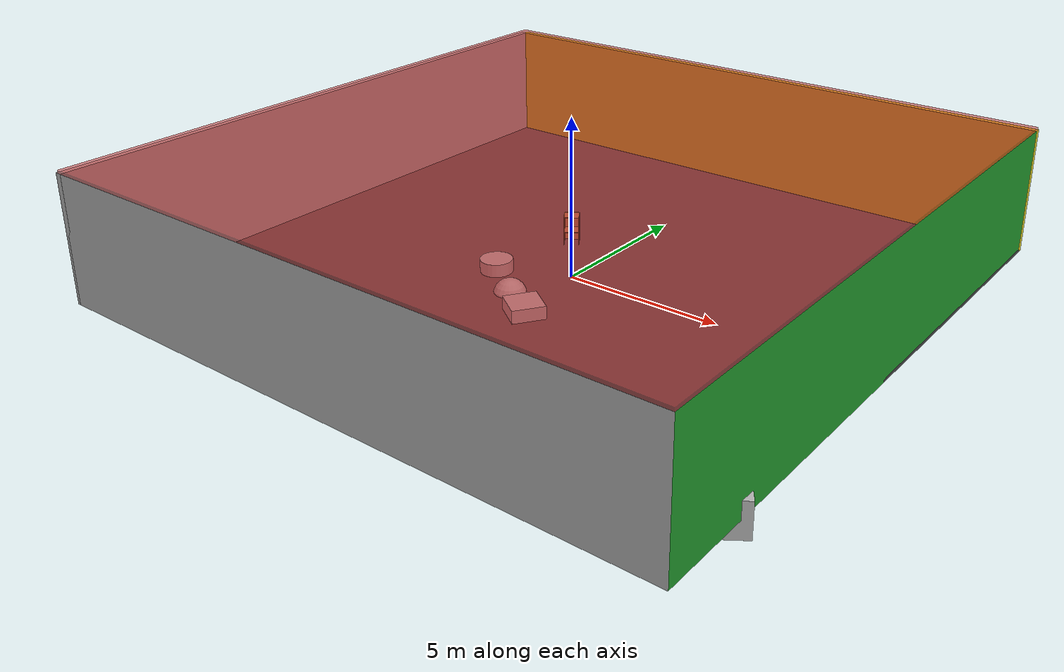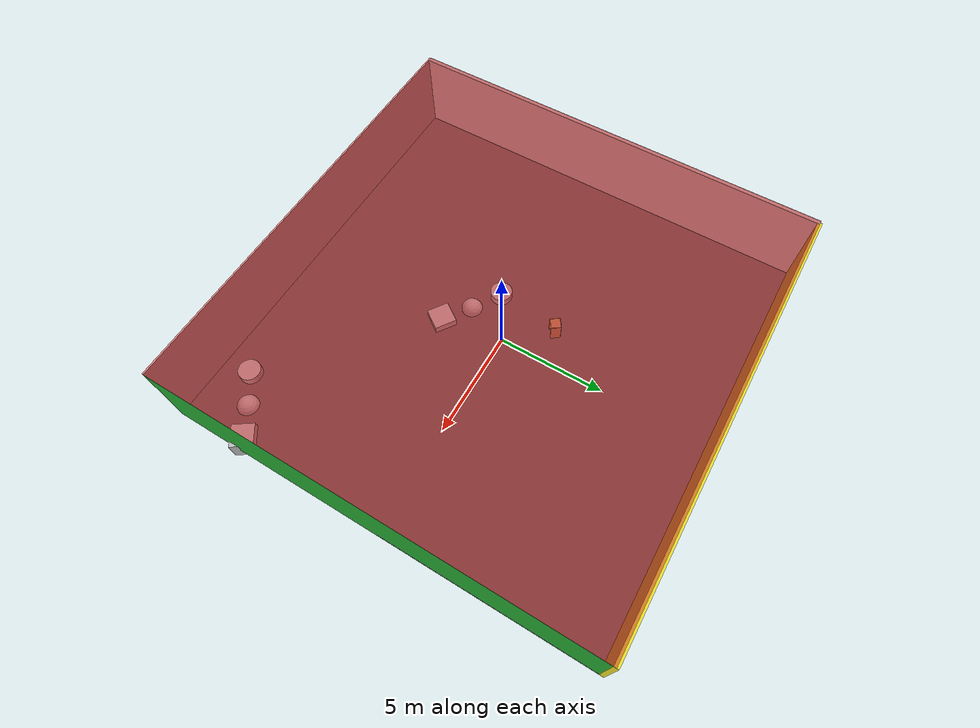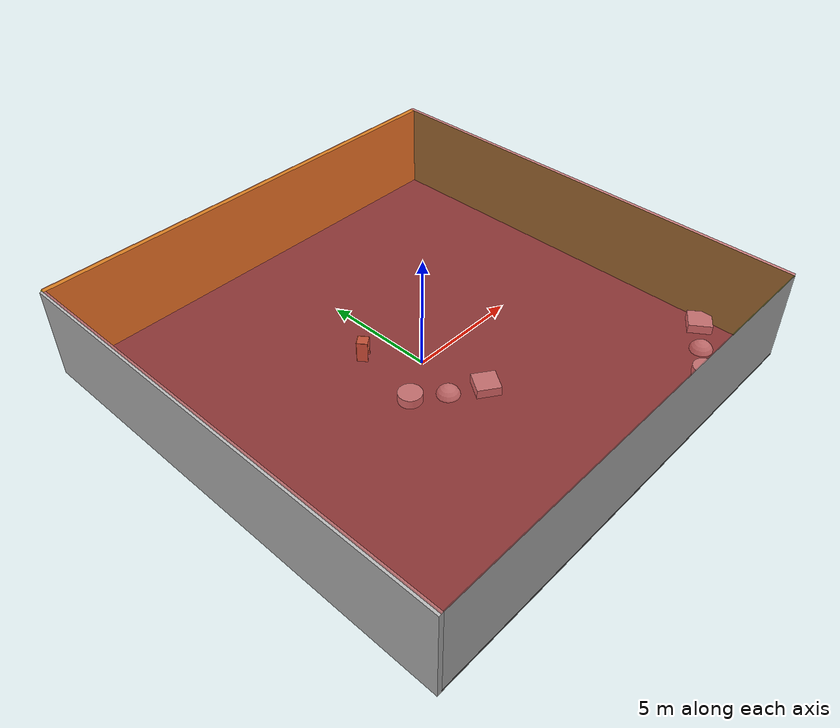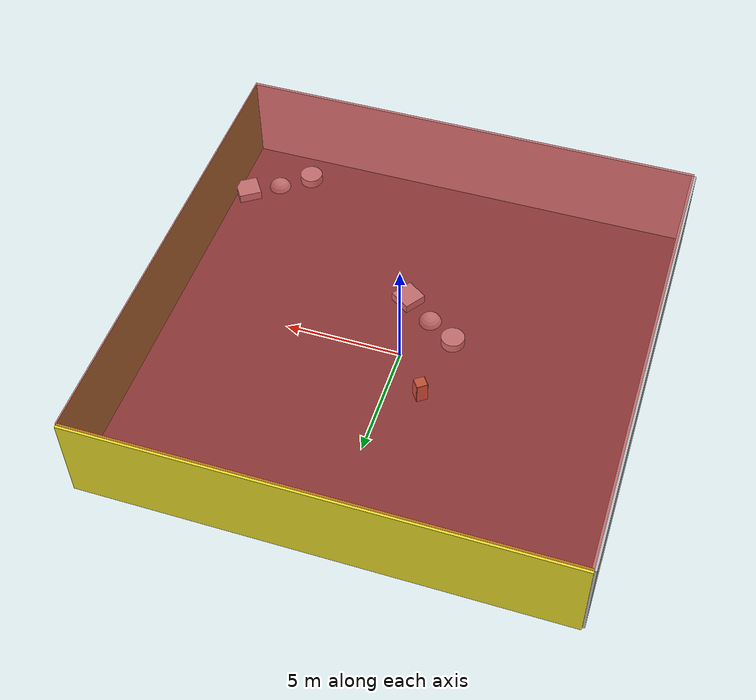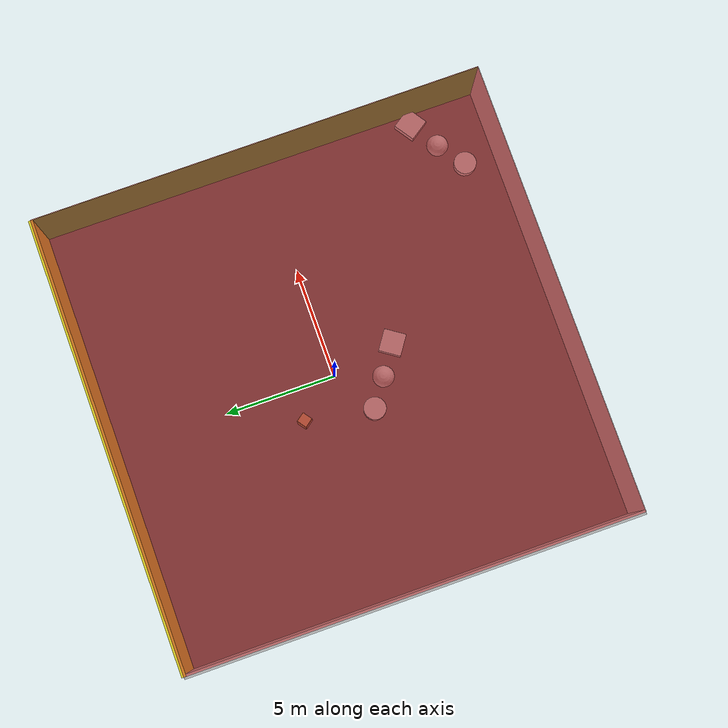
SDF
<sdf version="1.4">
 <world name="default">
  <physics type="ode">
   <max_step_size>0.001</max_step_size>
   <real_time_factor>1</real_time_factor>
   <real_time_update_rate>1000</real_time_update_rate>
   <gravity>0 0 -9.8</gravity>
  </physics>
  <scene><ambient>0.4 0.4 0.4 1</ambient><background>0.7 0.7 0.7 1</background><shadows>1</shadows></scene>
  <model name="Surrounding">
   <static>1</static>
   <link name="Ceiling">
    <collision name="Ceiling_Collision"><geometry><box><size>20 20 0.1</size></box></geometry></collision>
    <visual name="Ceiling_Visual">
     <geometry><box><size>20 20 0.1</size></box></geometry>
     <material>
      <script><uri>file://media/materials/scripts/gazebo.material</uri><name>Gazebo/RedTransparent</name></script>
     </material>
    </visual>
    <pose>0 0 4.05 0 0 0</pose>
   </link>
   <link name="Wall_South">
    <collision name="Wall_South_Collision">
     <geometry><box><size>20 0 4</size></box></geometry>
     <pose>0 0 2 0 -0 0</pose>
    </collision>
    <visual name="Wall_South_Visual">
     <pose>0 0 2 0 -0 0</pose>
     <geometry><box><size>20 0 4</size></box></geometry>
     <material>
      <script><uri>file://media/materials/scripts/gazebo.material</uri><name>Gazebo/LightOn</name></script>
     </material>
    </visual>
    <velocity_decay><linear>0</linear><angular>0</angular></velocity_decay>
    <pose>0 -10 0 0 -0 0</pose>
   </link>
   <link name="Wall_East">
    <collision name="Wall_21_Collision">
     <geometry><box><size>20 0 4</size></box></geometry>
     <pose>0 0 2 0 -0 0</pose>
    </collision>
    <visual name="Wall_21_Visual">
     <pose>0 0 2 0 -0 0</pose>
     <geometry><box><size>20 0 4</size></box></geometry>
     <material>
      <script><uri>file://media/materials/scripts/gazebo.material</uri><name>Gazebo/GreenGlow</name></script>
     </material>
    </visual>
    <velocity_decay><linear>0</linear><angular>0</angular></velocity_decay>
    <pose>10 0 0 0 -0 1.5708</pose>
   </link>
   <link name="Wall_North">
    <collision name="Wall_22_Collision">
     <geometry><box><size>20 0.2 4</size></box></geometry>
     <pose>0 0 2 0 -0 0</pose>
    </collision>
    <visual name="Wall_22_Visual">
     <pose>0 0 2 0 -0 0</pose>
     <geometry><box><size>20 0.2 4</size></box></geometry>
     <material>
      <script><uri>file://media/materials/scripts/gazebo.material</uri><name>Gazebo/Yellow</name></script>
     </material>
    </visual>
    <velocity_decay><linear>0</linear><angular>0</angular></velocity_decay>
    <pose>0 10 0 0 -0 0</pose>
   </link>
   <link name="Wall_West">
    <collision name="Wall_23_Collision">
     <geometry><box><size>20 0.2 4</size></box></geometry>
     <pose>0 0 2 0 -0 0</pose>
    </collision>
    <visual name="Wall_23_Visual">
     <pose>0 0 2 0 -0 0</pose>
     <geometry><box><size>20 0.2 4</size></box></geometry>
     <material>
      <script><uri>file://media/materials/scripts/gazebo.material</uri><name>Gazebo/CloudySky</name></script>
     </material>
    </visual>
    <velocity_decay><linear>0</linear><angular>0</angular></velocity_decay>
    <pose>-10 0 0 0 0 -1.5708</pose>
   </link>
   <link name="Ground_link">
    <collision name="collision">
     <pose>0 0 .05 0 -0 0</pose>
     <geometry><box><size>20 20 0.1</size></box></geometry>
    </collision>
    <visual name="visual">
     <pose>0 0 .05 0 -0 0</pose>
     <geometry><box><size>20 20 0.1</size></box></geometry>
     <material>
      <script><uri>file://media/materials/scripts/gazebo.material</uri><name>Gazebo/Road</name></script>
     </material>
    </visual>
   </link>
   <static>1</static>
  </model>
  <spherical_coordinates>
   <surface_model>EARTH_WGS84</surface_model>
   <latitude_deg>0</latitude_deg>
   <longitude_deg>0</longitude_deg>
   <elevation>0</elevation>
   <heading_deg>0</heading_deg>
  </spherical_coordinates>
  <light name="lightball_0" type="diffuse">
   <diffuse>0.8 0.8 0.8 1</diffuse>
   <specular>0.2 0.2 0.2 1</specular>
   <attenuation>
    <range>100</range>
    <constant>0.7</constant>
    <linear>0.01</linear>
    <quadratic>0.001</quadratic>
   </attenuation>
   <direction>-0.5 0.1 -0.9</direction>
   <pose>-7.90463207097 -6.00725366209 1.76898726258 0 0 0</pose>
  </light>
  <light name="lightball_1" type="diffuse">
   <diffuse>0.8 0.8 0.8 1</diffuse>
   <specular>0.2 0.2 0.2 1</specular>
   <attenuation>
    <range>100</range>
    <constant>0.7</constant>
    <linear>0.01</linear>
    <quadratic>0.001</quadratic>
   </attenuation>
   <direction>-0.5 0.1 -0.9</direction>
   <pose>9.56868068966 -2.98018499951 2.83367295885 0 0 0</pose>
  </light>
  <light name="lightball_2" type="diffuse">
   <diffuse>0.8 0.8 0.8 1</diffuse>
   <specular>0.2 0.2 0.2 1</specular>
   <attenuation>
    <range>100</range>
    <constant>0.7</constant>
    <linear>0.01</linear>
    <quadratic>0.001</quadratic>
   </attenuation>
   <direction>-0.5 0.1 -0.9</direction>
   <pose>0.494724892232 -5.49679900408 2.80329380554 0 0 0</pose>
  </light>
  <light name="lightball_3" type="diffuse">
   <diffuse>0.8 0.8 0.8 1</diffuse>
   <specular>0.2 0.2 0.2 1</specular>
   <attenuation>
    <range>100</range>
    <constant>0.7</constant>
    <linear>0.01</linear>
    <quadratic>0.001</quadratic>
   </attenuation>
   <direction>-0.5 0.1 -0.9</direction>
   <pose>7.4015140406 6.94527496646 1.07884341818 0 0 0</pose>
  </light>
  <light name="lightball_4" type="diffuse">
   <diffuse>0.8 0.8 0.8 1</diffuse>
   <specular>0.2 0.2 0.2 1</specular>
   <attenuation>
    <range>100</range>
    <constant>0.7</constant>
    <linear>0.01</linear>
    <quadratic>0.001</quadratic>
   </attenuation>
   <direction>-0.5 0.1 -0.9</direction>
   <pose>-5.89947334688 0.295081987742 2.72125405194 0 0 0</pose>
  </light>
  <light name="lightball_5" type="diffuse">
   <diffuse>0.8 0.8 0.8 1</diffuse>
   <specular>0.2 0.2 0.2 1</specular>
   <attenuation>
    <range>100</range>
    <constant>0.7</constant>
    <linear>0.01</linear>
    <quadratic>0.001</quadratic>
   </attenuation>
   <direction>-0.5 0.1 -0.9</direction>
   <pose>4.72453865374 3.37244557284 3.55344034505 0 0 0</pose>
  </light>
  <light name="lightball_6" type="diffuse">
   <diffuse>0.8 0.8 0.8 1</diffuse>
   <specular>0.2 0.2 0.2 1</specular>
   <attenuation>
    <range>100</range>
    <constant>0.7</constant>
    <linear>0.01</linear>
    <quadratic>0.001</quadratic>
   </attenuation>
   <direction>-0.5 0.1 -0.9</direction>
   <pose>-6.2620508429 0.184833840741 3.01844843505 0 0 0</pose>
  </light>
  <light name="lightball_7" type="diffuse">
   <diffuse>0.8 0.8 0.8 1</diffuse>
   <specular>0.2 0.2 0.2 1</specular>
   <attenuation>
    <range>100</range>
    <constant>0.7</constant>
    <linear>0.01</linear>
    <quadratic>0.001</quadratic>
   </attenuation>
   <direction>-0.5 0.1 -0.9</direction>
   <pose>-1.29756161153 9.41906703905 2.67194721447 0 0 0</pose>
  </light>
  <light name="lightball_8" type="diffuse">
   <diffuse>0.8 0.8 0.8 1</diffuse>
   <specular>0.2 0.2 0.2 1</specular>
   <attenuation>
    <range>100</range>
    <constant>0.7</constant>
    <linear>0.01</linear>
    <quadratic>0.001</quadratic>
   </attenuation>
   <direction>-0.5 0.1 -0.9</direction>
   <pose>1.82440855478 -4.81048751275 2.20155553864 0 0 0</pose>
  </light>
  <light name="lightball_9" type="diffuse">
   <diffuse>0.8 0.8 0.8 1</diffuse>
   <specular>0.2 0.2 0.2 1</specular>
   <attenuation>
    <range>100</range>
    <constant>0.7</constant>
    <linear>0.01</linear>
    <quadratic>0.001</quadratic>
   </attenuation>
   <direction>-0.5 0.1 -0.9</direction>
   <pose>1.06135885821 6.52631752898 2.6899017817 0 0 0</pose>
  </light>
  <light name="lightball_10" type="diffuse">
   <diffuse>0.8 0.8 0.8 1</diffuse>
   <specular>0.2 0.2 0.2 1</specular>
   <attenuation>
    <range>100</range>
    <constant>0.7</constant>
    <linear>0.01</linear>
    <quadratic>0.001</quadratic>
   </attenuation>
   <direction>-0.5 0.1 -0.9</direction>
   <pose>9.09572265309 -4.27560718835 1.43137375208 0 0 0</pose>
  </light>
  <include>
   <uri>model://textured_shapes</uri>
   <pose>-0.711330527412 -2.02721745215 0 0 0 0.970365828144</pose>
  </include>
  <include><uri>model://cabinet</uri><pose>-1.45927850219 1.88549414747 0 0 0 2.20010090873</pose></include>
  <include>
   <uri>model://textured_shapes</uri>
   <pose>8.28082902386 -7.80075971936 0 0 0 2.16792191539</pose>
  </include>
 </world>
</sdf>

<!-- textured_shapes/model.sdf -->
<sdf version="1.6">
  <model name="textured_shapes">
    <pose>0 0 0.5 0 0 0</pose>
    <link name="box">
      <pose>0 -1.5 0 0 0 0</pose>
      <collision name="collision">
        <geometry>
          <box>
            <size>1 1 1</size>
          </box>
        </geometry>
      </collision>
      <visual name="visual">
        <geometry>
          <box>
            <size>1 1 1</size>
          </box>
        </geometry>
        <material>
          <script>
            <uri>model://../model_source/models/textured_shapes/materials/scripts</uri>
            <uri>model://../model_source/models/textured_shapes/materials/textures</uri>
            <name>TexturedShape/Squares</name>
          </script>
        </material>
      </visual>
    </link>
    <link name="sphere">
      <collision name="collision">
        <geometry>
          <sphere>
            <radius>0.5</radius>
          </sphere>
        </geometry>
      </collision>
      <visual name="visual">
        <geometry>
          <sphere>
            <radius>0.5</radius>
          </sphere>
        </geometry>
        <material>
          <script>
            <uri>model://../model_source/models/textured_shapes/materials/scripts</uri>
            <uri>model://../model_source/models/textured_shapes/materials/textures</uri>
            <name>TexturedShape/Squares</name>
          </script>
        </material>
      </visual>
    </link>
    <link name="cylinder">
      <pose>0 1.5 0 0 0 0</pose>
      <collision name="collision">
        <geometry>
          <cylinder>
            <radius>0.5</radius>
            <length>1</length>
          </cylinder>
        </geometry>
      </collision>
      <visual name="visual">
        <geometry>
          <cylinder>
            <radius>0.5</radius>
            <length>1</length>
          </cylinder>
        </geometry>
        <material>
          <script>
            <uri>model://../model_source/models/textured_shapes/materials/scripts</uri>
            <uri>model://../model_source/models/textured_shapes/materials/textures</uri>
            <name>TexturedShape/Squares</name>
          </script>
        </material>
      </visual>
    </link>
  </model>
</sdf>

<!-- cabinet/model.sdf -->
<sdf version="1.5">
  <model name="cabinet">
    <static>true</static>
    <link name="cabinet_bottom_plate">
      <inertial>
        <pose>0 0 -1 0 0 0</pose>
        <inertia>
          <ixx>2.050000</ixx>
          <ixy>0</ixy>
          <ixz>0</ixz>
          <iyy>2.050000</iyy>
          <iyz>0</iyz>
          <izz>2.050000</izz>
        </inertia>
        <mass>25.000000</mass>
      </inertial>
      <collision name="cabinet_bottom_plate_geom">
        <pose>0 0 0.010000 0 0 0</pose>
        <geometry>
          <box>
            <size>0.450000 0.450000 0.020000</size>
          </box>
        </geometry>
      </collision>
      <visual name="cabinet_bottom_plate_geom_visual">
        <pose>0 0 0.010000 0 0 0</pose>
        <geometry>
          <box>
            <size>0.450000 0.450000 0.020000</size>
          </box>
        </geometry>
        <material>
          <script>
            <uri>model://media/materials/scripts/gazebo.material</uri>
            <name>Gazebo/Wood</name>
          </script>
        </material>
      </visual>
      <collision name="cabinet_bottom_plate_geom_cabinet_back_plate">
        <pose>0.235000 0 0.510000 0 0 0</pose>
        <geometry>
          <box>
            <size>0.020000 0.450000 1.020000</size>
          </box>
        </geometry>
      </collision>
      <visual name="cabinet_bottom_plate_geom_cabinet_back_plate_visual">
        <pose>0.235000 0 0.510000 0 0 0</pose>
        <geometry>
          <box>
            <size>0.020000 0.450000 1.020000</size>
          </box>
        </geometry>
        <material>
          <script>
            <uri>model://media/materials/scripts/gazebo.material</uri>
            <name>Gazebo/Wood</name>
          </script>
        </material>
      </visual>
      <collision name="cabinet_bottom_plate_geom_cabinet_left_plate">
        <pose>0 0.235000 0.510000 0 0 0</pose>
        <geometry>
          <box>
            <size>0.450000 0.020000 1.020000</size>
          </box>
        </geometry>
      </collision>
      <visual name="cabinet_bottom_plate_geom_cabinet_left_plate_visual">
        <pose>0 0.235000 0.510000 0 0 0</pose>
        <geometry>
          <box>
            <size>0.450000 0.020000 1.020000</size>
          </box>
        </geometry>
        <material>
          <script>
            <uri>model://media/materials/scripts/gazebo.material</uri>
            <name>Gazebo/Wood</name>
          </script>
        </material>
      </visual>
      <collision name="cabinet_bottom_plate_geom_cabinet_middle_plate">
        <pose>0 0 0.510000 0 0 0</pose>
        <geometry>
          <box>
            <size>0.450000 0.450000 0.020000</size>
          </box>
        </geometry>
      </collision>
      <visual name="cabinet_bottom_plate_geom_cabinet_middle_plate_visual">
        <pose>0 0 0.510000 0 0 0</pose>
        <geometry>
          <box>
            <size>0.450000 0.450000 0.020000</size>
          </box>
        </geometry>
        <material>
          <script>
            <uri>model://media/materials/scripts/gazebo.material</uri>
            <name>Gazebo/Wood</name>
          </script>
        </material>
      </visual>
      <collision name="cabinet_bottom_plate_geom_cabinet_right_plate">
        <pose>0 -0.235000 0.510000 0 0 0</pose>
        <geometry>
          <box>
            <size>0.450000 0.020000 1.020000</size>
          </box>
        </geometry>
      </collision>
      <visual name="cabinet_bottom_plate_geom_cabinet_right_plate_visual">
        <pose>0 -0.235000 0.510000 0 0 0</pose>
        <geometry>
          <box>
            <size>0.450000 0.020000 1.020000</size>
          </box>
        </geometry>
        <material>
          <script>
            <uri>model://media/materials/scripts/gazebo.material</uri>
            <name>Gazebo/Wood</name>
          </script>
        </material>
      </visual>
      <collision name="cabinet_bottom_plate_geom_cabinet_top_plate">
        <pose>0 0 1.010000 0 0 0</pose>
        <geometry>
          <box>
            <size>0.450000 0.450000 0.020000</size>
          </box>
        </geometry>
      </collision>
      <visual name="cabinet_bottom_plate_geom_cabinet_top_plate_visual">
        <pose>0 0 1.010000 0 0 0</pose>
        <geometry>
          <box>
            <size>0.450000 0.450000 0.020000</size>
          </box>
        </geometry>
        <material>
          <script>
            <uri>model://media/materials/scripts/gazebo.material</uri>
            <name>Gazebo/Wood</name>
          </script>
        </material>
      </visual>
    </link>
  </model>
</sdf>
